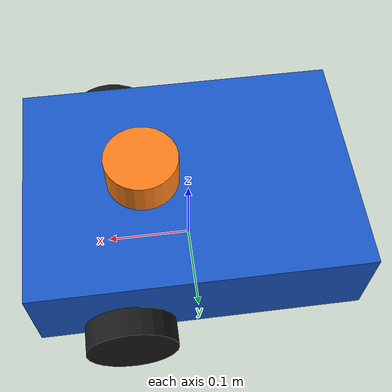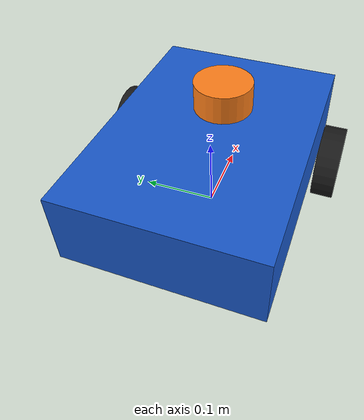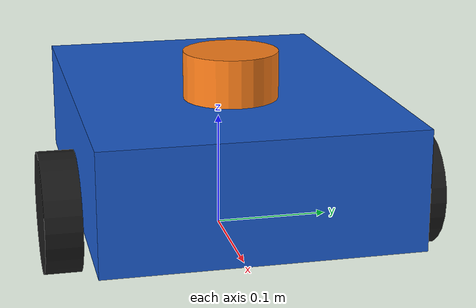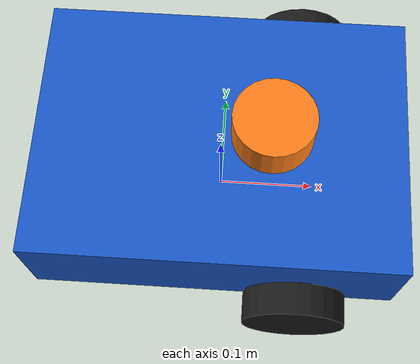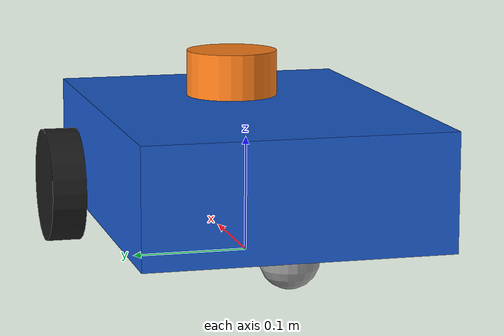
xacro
<?xml version="1.0"?>
<robot name="diffbot" xmlns:xacro="http://www.ros.org/wiki/xacro">

  <!-- ===================== Parameters ===================== -->
  <xacro:property name="PI" value="3.14159265359"/>
  <xacro:property name="base_length" value="0.36"/>
  <xacro:property name="base_width" value="0.26"/>
  <xacro:property name="base_height" value="0.10"/>
  <xacro:property name="base_mass" value="2.5"/>
  <xacro:property name="wheel_radius" value="0.05"/>
  <xacro:property name="wheel_width" value="0.03"/>
  <xacro:property name="wheel_mass" value="0.3"/>
  <xacro:property name="wheel_separation" value="0.30"/>
  <xacro:property name="wheel_x_offset" value="0.08"/>
  <xacro:property name="caster_radius" value="0.025"/>

  <!-- ===================== Materials ===================== -->
  <material name="blue"><color rgba="0.1 0.35 0.8 1.0"/></material>
  <material name="black"><color rgba="0.1 0.1 0.1 1.0"/></material>
  <material name="grey"><color rgba="0.6 0.6 0.6 1.0"/></material>
  <material name="orange"><color rgba="1.0 0.5 0.1 1.0"/></material>

  <!-- ===================== Inertia macros ===================== -->
  <xacro:macro name="box_inertia" params="m x y z">
    <inertial>
      <mass value="${m}"/>
      <inertia ixx="${m*(y*y+z*z)/12}" ixy="0" ixz="0"
               iyy="${m*(x*x+z*z)/12}" iyz="0"
               izz="${m*(x*x+y*y)/12}"/>
    </inertial>
  </xacro:macro>

  <xacro:macro name="cylinder_inertia" params="m r h">
    <inertial>
      <origin xyz="0 0 0" rpy="${PI/2} 0 0"/>
      <mass value="${m}"/>
      <inertia ixx="${m*(3*r*r+h*h)/12}" ixy="0" ixz="0"
               iyy="${m*(3*r*r+h*h)/12}" iyz="0"
               izz="${m*r*r/2}"/>
    </inertial>
  </xacro:macro>

  <xacro:macro name="sphere_inertia" params="m r">
    <inertial>
      <mass value="${m}"/>
      <inertia ixx="${2*m*r*r/5}" ixy="0" ixz="0" iyy="${2*m*r*r/5}" iyz="0" izz="${2*m*r*r/5}"/>
    </inertial>
  </xacro:macro>

  <!-- ===================== Links ===================== -->
  <link name="base_footprint"/>

  <link name="base_link">
    <visual>
      <geometry><box size="${base_length} ${base_width} ${base_height}"/></geometry>
      <material name="blue"/>
    </visual>
    <collision>
      <geometry><box size="${base_length} ${base_width} ${base_height}"/></geometry>
    </collision>
    <xacro:box_inertia m="${base_mass}" x="${base_length}" y="${base_width}" z="${base_height}"/>
  </link>

  <joint name="base_joint" type="fixed">
    <parent link="base_footprint"/>
    <child link="base_link"/>
    <origin xyz="0 0 ${wheel_radius + base_height/2 - 0.02}"/>
  </joint>

  <xacro:macro name="wheel" params="side y_sign">
    <link name="${side}_wheel">
      <visual>
        <origin rpy="${PI/2} 0 0"/>
        <geometry><cylinder radius="${wheel_radius}" length="${wheel_width}"/></geometry>
        <material name="black"/>
      </visual>
      <collision>
        <origin rpy="${PI/2} 0 0"/>
        <geometry><cylinder radius="${wheel_radius}" length="${wheel_width}"/></geometry>
      </collision>
      <xacro:cylinder_inertia m="${wheel_mass}" r="${wheel_radius}" h="${wheel_width}"/>
    </link>
    <joint name="${side}_wheel_joint" type="continuous">
      <parent link="base_link"/>
      <child link="${side}_wheel"/>
      <origin xyz="${wheel_x_offset} ${y_sign*wheel_separation/2} ${-(base_height/2 - 0.02)}"/>
      <axis xyz="0 1 0"/>
    </joint>
  </xacro:macro>

  <xacro:wheel side="left" y_sign="1"/>
  <xacro:wheel side="right" y_sign="-1"/>

  <link name="caster">
    <visual>
      <geometry><sphere radius="${caster_radius}"/></geometry>
      <material name="grey"/>
    </visual>
    <collision>
      <geometry><sphere radius="${caster_radius}"/></geometry>
    </collision>
    <xacro:sphere_inertia m="0.05" r="${caster_radius}"/>
  </link>
  <joint name="caster_joint" type="fixed">
    <parent link="base_link"/>
    <child link="caster"/>
    <origin xyz="${-base_length/2 + 0.04} 0 ${-(base_height/2 + wheel_radius - caster_radius - 0.02)}"/>
  </joint>

  <link name="lidar_link">
    <visual>
      <geometry><cylinder radius="0.04" length="0.04"/></geometry>
      <material name="orange"/>
    </visual>
    <xacro:cylinder_inertia m="0.1" r="0.04" h="0.04"/>
  </link>
  <joint name="lidar_joint" type="fixed">
    <parent link="base_link"/>
    <child link="lidar_link"/>
    <origin xyz="0.05 0 ${base_height/2 + 0.02}"/>
  </joint>

  <link name="imu_link"/>
  <joint name="imu_joint" type="fixed">
    <parent link="base_link"/>
    <child link="imu_link"/>
    <origin xyz="0 0 0"/>
  </joint>
</robot>
